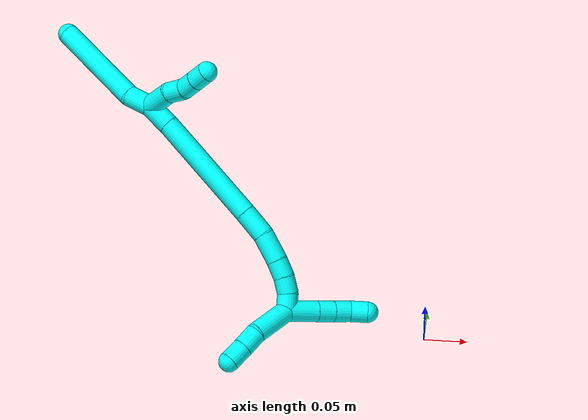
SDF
<sdf version="1.7">
 <world name="default">
  <model name="photoneo_s_sensor">
   <static>1</static>
   <pose>0 0 2 1.57079 1.57079 3.14159</pose>
   <link name="link">
    <inertial><mass>0.1</mass></inertial>
    <sensor name="sensor" type="depth">
     <update_rate>30</update_rate>
     <camera>
      <horizontal_fov>1.22</horizontal_fov>
      <image><width>1920</width><height>1200</height><format>B8G8R8</format></image>
      <clip><near>0.1</near><far>4</far></clip>
      <depth_camera><output>points</output></depth_camera>
     </camera>
     <plugin name="camera_plugin" filename="libgazebo_ros_depth_camera.so">
      <baseline>0.2</baseline>
      <alwaysOn>1</alwaysOn>
      <updateRate>0.0</updateRate>
      <cameraName>camera_ir</cameraName>
      <imageTopicName>/camera/color/image_raw</imageTopicName>
      <cameraInfoTopicName>/camera/color/camera_info</cameraInfoTopicName>
      <depthImageTopicName>/camera/depth/image_raw</depthImageTopicName>
      <depthImageCameraInfoTopicName>/camera/depth/camera_info</depthImageCameraInfoTopicName>
      <pointCloudTopicName>/camera/depth/points</pointCloudTopicName>
      <frameName>fr_optical</frameName>
      <pointCloudCutoff>0.1</pointCloudCutoff>
      <pointCloudCutoffMax>2.0</pointCloudCutoffMax>
      <distortionK1>0</distortionK1>
      <distortionK2>0</distortionK2>
      <distortionK3>0</distortionK3>
      <distortionT1>0</distortionT1>
      <distortionT2>0</distortionT2>
      <CxPrime>0</CxPrime>
      <Cx>0</Cx>
      <Cy>0</Cy>
      <focalLength>0</focalLength>
      <hackBaseline>0</hackBaseline>
     </plugin>
    </sensor>
   </link>
  </model>
  <model name="bin">
   <static>1</static>
   <link name="bottom">
    <collision name="collision-bottom">
     <pose>0 0 -0.01 0 -0 0</pose>
     <geometry><box><size>0.8 0.6 0.02</size></box></geometry>
     <surface>
      <friction><ode><mu>100</mu><mu2>100</mu2></ode></friction>
      <contact><collide_bitmask>65535</collide_bitmask></contact>
     </surface>
    </collision>
   </link>
   <link name="west_wall">
    <collision name="collision-west_wall">
     <pose>-0.41 0 0.1 0 -0 0</pose>
     <geometry><box><size>0.02 0.6 0.2</size></box></geometry>
     <surface>
      <friction><ode><mu>100</mu><mu2>100</mu2></ode></friction>
      <contact><collide_bitmask>65535</collide_bitmask></contact>
     </surface>
    </collision>
   </link>
   <link name="east_wall">
    <collision name="collision-east_wall">
     <pose>0.41 0 0.1 0 -0 0</pose>
     <geometry><box><size>0.02 0.6 0.2</size></box></geometry>
     <surface>
      <friction><ode><mu>100</mu><mu2>100</mu2></ode></friction>
      <contact><collide_bitmask>65535</collide_bitmask></contact>
     </surface>
    </collision>
   </link>
   <link name="south_wall">
    <collision name="collision-south_wall">
     <pose>0 -0.31 0.1 0 -0 0</pose>
     <geometry><box><size>0.8 0.02 0.2</size></box></geometry>
     <surface>
      <friction><ode><mu>100</mu><mu2>100</mu2></ode></friction>
      <contact><collide_bitmask>65535</collide_bitmask></contact>
     </surface>
    </collision>
   </link>
   <link name="north_wall">
    <collision name="collision-north_wall">
     <pose>0 0.31 0.1 0 -0 0</pose>
     <geometry><box><size>0.8 0.02 0.2</size></box></geometry>
     <surface>
      <friction><ode><mu>100</mu><mu2>100</mu2></ode></friction>
      <contact><collide_bitmask>65535</collide_bitmask></contact>
     </surface>
    </collision>
   </link>
  </model>
  <model name="3">
   <static>0</static>
   <link name="3">
    <collision name="collision-cylinder-e_1_2_8">
     <pose>-0.009178 -0.000961 0.011792 0.081335 -0.659802 -0.027864</pose>
     <geometry><cylinder><radius>0.0125</radius><length>0.029947</length></cylinder></geometry>
     <surface>
      <friction><ode><mu>1.16</mu><mu2>1.16</mu2><slip1>0</slip1><slip2>0</slip2></ode></friction>
      <contact><ode><kp>1e+06</kp><kd>1</kd><max_vel>0</max_vel><min_depth>0.001</min_depth></ode></contact>
     </surface>
    </collision>
    <visual name="visual-cylinder-e_1_2_8">
     <pose>-0.009178 -0.000961 0.011792 0.081335 -0.659802 -0.027864</pose>
     <geometry><cylinder><radius>0.0125</radius><length>0.029947</length></cylinder></geometry>
     <material><ambient>0.003922 1 0.996078 1</ambient></material>
    </visual>
    <collision name="collision-cylinder-e_2_8_6">
     <pose>-0.056292 0.012418 0.067838 -0.313375 -0.684097 0.112379</pose>
     <geometry><cylinder><radius>0.0125</radius><length>0.120053</length></cylinder></geometry>
     <surface>
      <friction><ode><mu>1.16</mu><mu2>1.16</mu2><slip1>0</slip1><slip2>0</slip2></ode></friction>
      <contact><ode><kp>1e+06</kp><kd>1</kd><max_vel>0</max_vel><min_depth>0.001</min_depth></ode></contact>
     </surface>
    </collision>
    <visual name="visual-cylinder-e_2_8_6">
     <pose>-0.056292 0.012418 0.067838 -0.313375 -0.684097 0.112379</pose>
     <geometry><cylinder><radius>0.0125</radius><length>0.120053</length></cylinder></geometry>
     <material><ambient>0.003922 1 0.996078 1</ambient></material>
    </visual>
    <collision name="collision-cylinder-e_1_2_9">
     <pose>0.015243 0.010479 -0.00146 -1.70925 0.964029 -1.0825</pose>
     <geometry><cylinder><radius>0.0125</radius><length>0.03711</length></cylinder></geometry>
     <surface>
      <friction><ode><mu>1.16</mu><mu2>1.16</mu2><slip1>0</slip1><slip2>0</slip2></ode></friction>
      <contact><ode><kp>1e+06</kp><kd>1</kd><max_vel>0</max_vel><min_depth>0.001</min_depth></ode></contact>
     </surface>
    </collision>
    <visual name="visual-cylinder-e_1_2_9">
     <pose>0.015243 0.010479 -0.00146 -1.70925 0.964029 -1.0825</pose>
     <geometry><cylinder><radius>0.0125</radius><length>0.03711</length></cylinder></geometry>
     <material><ambient>0.003922 1 0.996078 1</ambient></material>
    </visual>
    <collision name="collision-cylinder-e_2_9_10">
     <pose>0.039484 0.026488 -0.007088 -2.21666 0.914917 -1.5582</pose>
     <geometry><cylinder><radius>0.0125</radius><length>0.022708</length></cylinder></geometry>
     <surface>
      <friction><ode><mu>1.16</mu><mu2>1.16</mu2><slip1>0</slip1><slip2>0</slip2></ode></friction>
      <contact><ode><kp>1e+06</kp><kd>1</kd><max_vel>0</max_vel><min_depth>0.001</min_depth></ode></contact>
     </surface>
    </collision>
    <visual name="visual-cylinder-e_2_9_10">
     <pose>0.039484 0.026488 -0.007088 -2.21666 0.914917 -1.5582</pose>
     <geometry><cylinder><radius>0.0125</radius><length>0.022708</length></cylinder></geometry>
     <material><ambient>0.003922 1 0.996078 1</ambient></material>
    </visual>
    <collision name="collision-cylinder-e_3_10_11">
     <pose>0.056186 0.038398 -0.012048 -1.69438 0.875325 -0.974168</pose>
     <geometry><cylinder><radius>0.0125</radius><length>0.020067</length></cylinder></geometry>
     <surface>
      <friction><ode><mu>1.16</mu><mu2>1.16</mu2><slip1>0</slip1><slip2>0</slip2></ode></friction>
      <contact><ode><kp>1e+06</kp><kd>1</kd><max_vel>0</max_vel><min_depth>0.001</min_depth></ode></contact>
     </surface>
    </collision>
    <visual name="visual-cylinder-e_3_10_11">
     <pose>0.056186 0.038398 -0.012048 -1.69438 0.875325 -0.974168</pose>
     <geometry><cylinder><radius>0.0125</radius><length>0.020067</length></cylinder></geometry>
     <material><ambient>0.003922 1 0.996078 1</ambient></material>
    </visual>
    <collision name="collision-cylinder-e_4_11_5">
     <pose>0.071405 0.051395 -0.013772 -1.71066 0.843991 -0.953684</pose>
     <geometry><cylinder><radius>0.0125</radius><length>0.020114</length></cylinder></geometry>
     <surface>
      <friction><ode><mu>1.16</mu><mu2>1.16</mu2><slip1>0</slip1><slip2>0</slip2></ode></friction>
      <contact><ode><kp>1e+06</kp><kd>1</kd><max_vel>0</max_vel><min_depth>0.001</min_depth></ode></contact>
     </surface>
    </collision>
    <visual name="visual-cylinder-e_4_11_5">
     <pose>0.071405 0.051395 -0.013772 -1.71066 0.843991 -0.953684</pose>
     <geometry><cylinder><radius>0.0125</radius><length>0.020114</length></cylinder></geometry>
     <material><ambient>0.003922 1 0.996078 1</ambient></material>
    </visual>
    <collision name="collision-cylinder-e_1_2_12">
     <pose>0.006169 -0.003267 -0.014196 2.91541 0.400574 2.12143</pose>
     <geometry><cylinder><radius>0.0125</radius><length>0.031638</length></cylinder></geometry>
     <surface>
      <friction><ode><mu>1.16</mu><mu2>1.16</mu2><slip1>0</slip1><slip2>0</slip2></ode></friction>
      <contact><ode><kp>1e+06</kp><kd>1</kd><max_vel>0</max_vel><min_depth>0.001</min_depth></ode></contact>
     </surface>
    </collision>
    <visual name="visual-cylinder-e_1_2_12">
     <pose>0.006169 -0.003267 -0.014196 2.91541 0.400574 2.12143</pose>
     <geometry><cylinder><radius>0.0125</radius><length>0.031638</length></cylinder></geometry>
     <material><ambient>0.003922 1 0.996078 1</ambient></material>
    </visual>
    <collision name="collision-cylinder-e_2_12_13">
     <pose>0.035751 -0.024802 -0.0914 2.85939 0.342803 1.76723</pose>
     <geometry><cylinder><radius>0.0125</radius><length>0.139312</length></cylinder></geometry>
     <surface>
      <friction><ode><mu>1.16</mu><mu2>1.16</mu2><slip1>0</slip1><slip2>0</slip2></ode></friction>
      <contact><ode><kp>1e+06</kp><kd>1</kd><max_vel>0</max_vel><min_depth>0.001</min_depth></ode></contact>
     </surface>
    </collision>
    <visual name="visual-cylinder-e_2_12_13">
     <pose>0.035751 -0.024802 -0.0914 2.85939 0.342803 1.76723</pose>
     <geometry><cylinder><radius>0.0125</radius><length>0.139312</length></cylinder></geometry>
     <material><ambient>0.003922 1 0.996078 1</ambient></material>
    </visual>
    <collision name="collision-cylinder-e_3_13_14">
     <pose>0.063994 -0.047782 -0.169675 2.8423 0.293567 1.55121</pose>
     <geometry><cylinder><radius>0.0125</radius><length>0.033383</length></cylinder></geometry>
     <surface>
      <friction><ode><mu>1.16</mu><mu2>1.16</mu2><slip1>0</slip1><slip2>0</slip2></ode></friction>
      <contact><ode><kp>1e+06</kp><kd>1</kd><max_vel>0</max_vel><min_depth>0.001</min_depth></ode></contact>
     </surface>
    </collision>
    <visual name="visual-cylinder-e_3_13_14">
     <pose>0.063994 -0.047782 -0.169675 2.8423 0.293567 1.55121</pose>
     <geometry><cylinder><radius>0.0125</radius><length>0.033383</length></cylinder></geometry>
     <material><ambient>0.003922 1 0.996078 1</ambient></material>
    </visual>
    <collision name="collision-cylinder-e_4_14_15">
     <pose>0.071686 -0.060208 -0.199752 2.66132 0.169741 0.668793</pose>
     <geometry><cylinder><radius>0.0125</radius><length>0.033886</length></cylinder></geometry>
     <surface>
      <friction><ode><mu>1.16</mu><mu2>1.16</mu2><slip1>0</slip1><slip2>0</slip2></ode></friction>
      <contact><ode><kp>1e+06</kp><kd>1</kd><max_vel>0</max_vel><min_depth>0.001</min_depth></ode></contact>
     </surface>
    </collision>
    <visual name="visual-cylinder-e_4_14_15">
     <pose>0.071686 -0.060208 -0.199752 2.66132 0.169741 0.668793</pose>
     <geometry><cylinder><radius>0.0125</radius><length>0.033886</length></cylinder></geometry>
     <material><ambient>0.003922 1 0.996078 1</ambient></material>
    </visual>
    <collision name="collision-cylinder-e_5_15_16">
     <pose>0.075383 -0.073381 -0.223564 2.59664 0.079124 0.281441</pose>
     <geometry><cylinder><radius>0.0125</radius><length>0.02112</length></cylinder></geometry>
     <surface>
      <friction><ode><mu>1.16</mu><mu2>1.16</mu2><slip1>0</slip1><slip2>0</slip2></ode></friction>
      <contact><ode><kp>1e+06</kp><kd>1</kd><max_vel>0</max_vel><min_depth>0.001</min_depth></ode></contact>
     </surface>
    </collision>
    <visual name="visual-cylinder-e_5_15_16">
     <pose>0.075383 -0.073381 -0.223564 2.59664 0.079124 0.281441</pose>
     <geometry><cylinder><radius>0.0125</radius><length>0.02112</length></cylinder></geometry>
     <material><ambient>0.003922 1 0.996078 1</ambient></material>
    </visual>
    <collision name="collision-cylinder-e_6_16_17">
     <pose>0.076252 -0.085315 -0.240305 2.44469 0.003425 0.009429</pose>
     <geometry><cylinder><radius>0.0125</radius><length>0.020185</length></cylinder></geometry>
     <surface>
      <friction><ode><mu>1.16</mu><mu2>1.16</mu2><slip1>0</slip1><slip2>0</slip2></ode></friction>
      <contact><ode><kp>1e+06</kp><kd>1</kd><max_vel>0</max_vel><min_depth>0.001</min_depth></ode></contact>
     </surface>
    </collision>
    <visual name="visual-cylinder-e_6_16_17">
     <pose>0.076252 -0.085315 -0.240305 2.44469 0.003425 0.009429</pose>
     <geometry><cylinder><radius>0.0125</radius><length>0.020185</length></cylinder></geometry>
     <material><ambient>0.003922 1 0.996078 1</ambient></material>
    </visual>
    <collision name="collision-cylinder-e_7_17_1">
     <pose>0.076556 -0.100557 -0.253331 2.11353 0.0263 0.046571</pose>
     <geometry><cylinder><radius>0.0125</radius><length>0.020477</length></cylinder></geometry>
     <surface>
      <friction><ode><mu>1.16</mu><mu2>1.16</mu2><slip1>0</slip1><slip2>0</slip2></ode></friction>
      <contact><ode><kp>1e+06</kp><kd>1</kd><max_vel>0</max_vel><min_depth>0.001</min_depth></ode></contact>
     </surface>
    </collision>
    <visual name="visual-cylinder-e_7_17_1">
     <pose>0.076556 -0.100557 -0.253331 2.11353 0.0263 0.046571</pose>
     <geometry><cylinder><radius>0.0125</radius><length>0.020477</length></cylinder></geometry>
     <material><ambient>0.003922 1 0.996078 1</ambient></material>
    </visual>
    <collision name="collision-cylinder-e_1_1_18">
     <pose>0.076332 -0.098557 -0.274 -2.53104 -0.026236 0.083213</pose>
     <geometry><cylinder><radius>0.0125</radius><length>0.037563</length></cylinder></geometry>
     <surface>
      <friction><ode><mu>1.16</mu><mu2>1.16</mu2><slip1>0</slip1><slip2>0</slip2></ode></friction>
      <contact><ode><kp>1e+06</kp><kd>1</kd><max_vel>0</max_vel><min_depth>0.001</min_depth></ode></contact>
     </surface>
    </collision>
    <visual name="visual-cylinder-e_1_1_18">
     <pose>0.076332 -0.098557 -0.274 -2.53104 -0.026236 0.083213</pose>
     <geometry><cylinder><radius>0.0125</radius><length>0.037563</length></cylinder></geometry>
     <material><ambient>0.003922 1 0.996078 1</ambient></material>
    </visual>
    <collision name="collision-cylinder-e_2_18_19">
     <pose>0.075554 -0.081844 -0.297826 -2.5278 -0.027602 0.087048</pose>
     <geometry><cylinder><radius>0.0125</radius><length>0.020665</length></cylinder></geometry>
     <surface>
      <friction><ode><mu>1.16</mu><mu2>1.16</mu2><slip1>0</slip1><slip2>0</slip2></ode></friction>
      <contact><ode><kp>1e+06</kp><kd>1</kd><max_vel>0</max_vel><min_depth>0.001</min_depth></ode></contact>
     </surface>
    </collision>
    <visual name="visual-cylinder-e_2_18_19">
     <pose>0.075554 -0.081844 -0.297826 -2.5278 -0.027602 0.087048</pose>
     <geometry><cylinder><radius>0.0125</radius><length>0.020665</length></cylinder></geometry>
     <material><ambient>0.003922 1 0.996078 1</ambient></material>
    </visual>
    <collision name="collision-cylinder-e_3_19_20">
     <pose>0.075103 -0.069807 -0.314605 -2.51079 -0.016066 0.049229</pose>
     <geometry><cylinder><radius>0.0125</radius><length>0.020647</length></cylinder></geometry>
     <surface>
      <friction><ode><mu>1.16</mu><mu2>1.16</mu2><slip1>0</slip1><slip2>0</slip2></ode></friction>
      <contact><ode><kp>1e+06</kp><kd>1</kd><max_vel>0</max_vel><min_depth>0.001</min_depth></ode></contact>
     </surface>
    </collision>
    <visual name="visual-cylinder-e_3_19_20">
     <pose>0.075103 -0.069807 -0.314605 -2.51079 -0.016066 0.049229</pose>
     <geometry><cylinder><radius>0.0125</radius><length>0.020647</length></cylinder></geometry>
     <material><ambient>0.003922 1 0.996078 1</ambient></material>
    </visual>
    <collision name="collision-cylinder-e_4_20_4">
     <pose>0.07817 -0.058246 -0.331377 -2.56616 0.311055 -0.974457</pose>
     <geometry><cylinder><radius>0.0125</radius><length>0.021125</length></cylinder></geometry>
     <surface>
      <friction><ode><mu>1.16</mu><mu2>1.16</mu2><slip1>0</slip1><slip2>0</slip2></ode></friction>
      <contact><ode><kp>1e+06</kp><kd>1</kd><max_vel>0</max_vel><min_depth>0.001</min_depth></ode></contact>
     </surface>
    </collision>
    <visual name="visual-cylinder-e_4_20_4">
     <pose>0.07817 -0.058246 -0.331377 -2.56616 0.311055 -0.974457</pose>
     <geometry><cylinder><radius>0.0125</radius><length>0.021125</length></cylinder></geometry>
     <material><ambient>0.003922 1 0.996078 1</ambient></material>
    </visual>
    <collision name="collision-cylinder-e_1_1_21">
     <pose>0.08508 -0.132022 -0.248802 1.16273 0.322143 0.212731</pose>
     <geometry><cylinder><radius>0.0125</radius><length>0.052147</length></cylinder></geometry>
     <surface>
      <friction><ode><mu>1.16</mu><mu2>1.16</mu2><slip1>0</slip1><slip2>0</slip2></ode></friction>
      <contact><ode><kp>1e+06</kp><kd>1</kd><max_vel>0</max_vel><min_depth>0.001</min_depth></ode></contact>
     </surface>
    </collision>
    <visual name="visual-cylinder-e_1_1_21">
     <pose>0.08508 -0.132022 -0.248802 1.16273 0.322143 0.212731</pose>
     <geometry><cylinder><radius>0.0125</radius><length>0.052147</length></cylinder></geometry>
     <material><ambient>0.003922 1 0.996078 1</ambient></material>
    </visual>
    <collision name="collision-cylinder-e_2_21_22">
     <pose>0.094836 -0.166519 -0.236985 1.4026 0.124846 0.105473</pose>
     <geometry><cylinder><radius>0.0125</radius><length>0.024115</length></cylinder></geometry>
     <surface>
      <friction><ode><mu>1.16</mu><mu2>1.16</mu2><slip1>0</slip1><slip2>0</slip2></ode></friction>
      <contact><ode><kp>1e+06</kp><kd>1</kd><max_vel>0</max_vel><min_depth>0.001</min_depth></ode></contact>
     </surface>
    </collision>
    <visual name="visual-cylinder-e_2_21_22">
     <pose>0.094836 -0.166519 -0.236985 1.4026 0.124846 0.105473</pose>
     <geometry><cylinder><radius>0.0125</radius><length>0.024115</length></cylinder></geometry>
     <material><ambient>0.003922 1 0.996078 1</ambient></material>
    </visual>
    <collision name="collision-cylinder-e_3_22_3">
     <pose>0.09793 -0.189828 -0.232582 1.36531 0.134584 0.109481</pose>
     <geometry><cylinder><radius>0.0125</radius><length>0.023738</length></cylinder></geometry>
     <surface>
      <friction><ode><mu>1.16</mu><mu2>1.16</mu2><slip1>0</slip1><slip2>0</slip2></ode></friction>
      <contact><ode><kp>1e+06</kp><kd>1</kd><max_vel>0</max_vel><min_depth>0.001</min_depth></ode></contact>
     </surface>
    </collision>
    <visual name="visual-cylinder-e_3_22_3">
     <pose>0.09793 -0.189828 -0.232582 1.36531 0.134584 0.109481</pose>
     <geometry><cylinder><radius>0.0125</radius><length>0.023738</length></cylinder></geometry>
     <material><ambient>0.003922 1 0.996078 1</ambient></material>
    </visual>
    <collision name="collision-sphere-3">
     <pose>0.099523 -0.201342 -0.230182 0 -0 0</pose>
     <geometry><sphere><radius>0.0125</radius></sphere></geometry>
     <surface>
      <friction><ode><mu>1.16</mu><mu2>1.16</mu2><slip1>0</slip1><slip2>0</slip2></ode></friction>
      <contact><ode><kp>1e+06</kp><kd>1</kd><max_vel>0</max_vel><min_depth>0.001</min_depth></ode></contact>
     </surface>
    </collision>
    <visual name="visual-sphere-3">
     <pose>0.099523 -0.201342 -0.230182 0 -0 0</pose>
     <geometry><sphere><radius>0.0125</radius></sphere></geometry>
     <material><ambient>0.003922 1 0.996078 1</ambient></material>
    </visual>
    <collision name="collision-sphere-22">
     <pose>0.096338 -0.178314 -0.234982 0 -0 0</pose>
     <geometry><sphere><radius>0.0125</radius></sphere></geometry>
     <surface>
      <friction><ode><mu>1.16</mu><mu2>1.16</mu2><slip1>0</slip1><slip2>0</slip2></ode></friction>
      <contact><ode><kp>1e+06</kp><kd>1</kd><max_vel>0</max_vel><min_depth>0.001</min_depth></ode></contact>
     </surface>
    </collision>
    <visual name="visual-sphere-22">
     <pose>0.096338 -0.178314 -0.234982 0 -0 0</pose>
     <geometry><sphere><radius>0.0125</radius></sphere></geometry>
     <material><ambient>0.003922 1 0.996078 1</ambient></material>
    </visual>
    <collision name="collision-sphere-21">
     <pose>0.093335 -0.154724 -0.238988 0 -0 0</pose>
     <geometry><sphere><radius>0.0125</radius></sphere></geometry>
     <surface>
      <friction><ode><mu>1.16</mu><mu2>1.16</mu2><slip1>0</slip1><slip2>0</slip2></ode></friction>
      <contact><ode><kp>1e+06</kp><kd>1</kd><max_vel>0</max_vel><min_depth>0.001</min_depth></ode></contact>
     </surface>
    </collision>
    <visual name="visual-sphere-21">
     <pose>0.093335 -0.154724 -0.238988 0 -0 0</pose>
     <geometry><sphere><radius>0.0125</radius></sphere></geometry>
     <material><ambient>0.003922 1 0.996078 1</ambient></material>
    </visual>
    <collision name="collision-sphere-4">
     <pose>0.081403 -0.052774 -0.339813 0 -0 0</pose>
     <geometry><sphere><radius>0.0125</radius></sphere></geometry>
     <surface>
      <friction><ode><mu>1.16</mu><mu2>1.16</mu2><slip1>0</slip1><slip2>0</slip2></ode></friction>
      <contact><ode><kp>1e+06</kp><kd>1</kd><max_vel>0</max_vel><min_depth>0.001</min_depth></ode></contact>
     </surface>
    </collision>
    <visual name="visual-sphere-4">
     <pose>0.081403 -0.052774 -0.339813 0 -0 0</pose>
     <geometry><sphere><radius>0.0125</radius></sphere></geometry>
     <material><ambient>0.003922 1 0.996078 1</ambient></material>
    </visual>
    <collision name="collision-sphere-20">
     <pose>0.074938 -0.063719 -0.322941 0 -0 0</pose>
     <geometry><sphere><radius>0.0125</radius></sphere></geometry>
     <surface>
      <friction><ode><mu>1.16</mu><mu2>1.16</mu2><slip1>0</slip1><slip2>0</slip2></ode></friction>
      <contact><ode><kp>1e+06</kp><kd>1</kd><max_vel>0</max_vel><min_depth>0.001</min_depth></ode></contact>
     </surface>
    </collision>
    <visual name="visual-sphere-20">
     <pose>0.074938 -0.063719 -0.322941 0 -0 0</pose>
     <geometry><sphere><radius>0.0125</radius></sphere></geometry>
     <material><ambient>0.003922 1 0.996078 1</ambient></material>
    </visual>
    <collision name="collision-sphere-11">
     <pose>0.063889 0.044778 -0.012841 0 -0 0</pose>
     <geometry><sphere><radius>0.0125</radius></sphere></geometry>
     <surface>
      <friction><ode><mu>1.16</mu><mu2>1.16</mu2><slip1>0</slip1><slip2>0</slip2></ode></friction>
      <contact><ode><kp>1e+06</kp><kd>1</kd><max_vel>0</max_vel><min_depth>0.001</min_depth></ode></contact>
     </surface>
    </collision>
    <visual name="visual-sphere-11">
     <pose>0.063889 0.044778 -0.012841 0 -0 0</pose>
     <geometry><sphere><radius>0.0125</radius></sphere></geometry>
     <material><ambient>0.003922 1 0.996078 1</ambient></material>
    </visual>
    <collision name="collision-sphere-10">
     <pose>0.048483 0.032018 -0.011256 0 -0 0</pose>
     <geometry><sphere><radius>0.0125</radius></sphere></geometry>
     <surface>
      <friction><ode><mu>1.16</mu><mu2>1.16</mu2><slip1>0</slip1><slip2>0</slip2></ode></friction>
      <contact><ode><kp>1e+06</kp><kd>1</kd><max_vel>0</max_vel><min_depth>0.001</min_depth></ode></contact>
     </surface>
    </collision>
    <visual name="visual-sphere-10">
     <pose>0.048483 0.032018 -0.011256 0 -0 0</pose>
     <geometry><sphere><radius>0.0125</radius></sphere></geometry>
     <material><ambient>0.003922 1 0.996078 1</ambient></material>
    </visual>
    <collision name="collision-sphere-6">
     <pose>-0.094227 0.026759 0.112092 0 -0 0</pose>
     <geometry><sphere><radius>0.0125</radius></sphere></geometry>
     <surface>
      <friction><ode><mu>1.16</mu><mu2>1.16</mu2><slip1>0</slip1><slip2>0</slip2></ode></friction>
      <contact><ode><kp>1e+06</kp><kd>1</kd><max_vel>0</max_vel><min_depth>0.001</min_depth></ode></contact>
     </surface>
    </collision>
    <visual name="visual-sphere-6">
     <pose>-0.094227 0.026759 0.112092 0 -0 0</pose>
     <geometry><sphere><radius>0.0125</radius></sphere></geometry>
     <material><ambient>0.003922 1 0.996078 1</ambient></material>
    </visual>
    <collision name="collision-sphere-9">
     <pose>0.030486 0.020958 -0.00292 0 -0 0</pose>
     <geometry><sphere><radius>0.0125</radius></sphere></geometry>
     <surface>
      <friction><ode><mu>1.16</mu><mu2>1.16</mu2><slip1>0</slip1><slip2>0</slip2></ode></friction>
      <contact><ode><kp>1e+06</kp><kd>1</kd><max_vel>0</max_vel><min_depth>0.001</min_depth></ode></contact>
     </surface>
    </collision>
    <visual name="visual-sphere-9">
     <pose>0.030486 0.020958 -0.00292 0 -0 0</pose>
     <geometry><sphere><radius>0.0125</radius></sphere></geometry>
     <material><ambient>0.003922 1 0.996078 1</ambient></material>
    </visual>
    <collision name="collision-sphere-2">
     <geometry><sphere><radius>0.0125</radius></sphere></geometry>
     <surface>
      <friction><ode><mu>1.16</mu><mu2>1.16</mu2><slip1>0</slip1><slip2>0</slip2></ode></friction>
      <contact><ode><kp>1e+06</kp><kd>1</kd><max_vel>0</max_vel><min_depth>0.001</min_depth></ode></contact>
     </surface>
    </collision>
    <visual name="visual-sphere-2">
     <geometry><sphere><radius>0.0125</radius></sphere></geometry>
     <material><ambient>0.003922 1 0.996078 1</ambient></material>
    </visual>
    <collision name="collision-sphere-19">
     <pose>0.075269 -0.075895 -0.306269 0 -0 0</pose>
     <geometry><sphere><radius>0.0125</radius></sphere></geometry>
     <surface>
      <friction><ode><mu>1.16</mu><mu2>1.16</mu2><slip1>0</slip1><slip2>0</slip2></ode></friction>
      <contact><ode><kp>1e+06</kp><kd>1</kd><max_vel>0</max_vel><min_depth>0.001</min_depth></ode></contact>
     </surface>
    </collision>
    <visual name="visual-sphere-19">
     <pose>0.075269 -0.075895 -0.306269 0 -0 0</pose>
     <geometry><sphere><radius>0.0125</radius></sphere></geometry>
     <material><ambient>0.003922 1 0.996078 1</ambient></material>
    </visual>
    <collision name="collision-sphere-8">
     <pose>-0.018356 -0.001922 0.023584 0 -0 0</pose>
     <geometry><sphere><radius>0.0125</radius></sphere></geometry>
     <surface>
      <friction><ode><mu>1.16</mu><mu2>1.16</mu2><slip1>0</slip1><slip2>0</slip2></ode></friction>
      <contact><ode><kp>1e+06</kp><kd>1</kd><max_vel>0</max_vel><min_depth>0.001</min_depth></ode></contact>
     </surface>
    </collision>
    <visual name="visual-sphere-8">
     <pose>-0.018356 -0.001922 0.023584 0 -0 0</pose>
     <geometry><sphere><radius>0.0125</radius></sphere></geometry>
     <material><ambient>0.003922 1 0.996078 1</ambient></material>
    </visual>
    <collision name="collision-sphere-5">
     <pose>0.078921 0.058013 -0.014704 0 -0 0</pose>
     <geometry><sphere><radius>0.0125</radius></sphere></geometry>
     <surface>
      <friction><ode><mu>1.16</mu><mu2>1.16</mu2><slip1>0</slip1><slip2>0</slip2></ode></friction>
      <contact><ode><kp>1e+06</kp><kd>1</kd><max_vel>0</max_vel><min_depth>0.001</min_depth></ode></contact>
     </surface>
    </collision>
    <visual name="visual-sphere-5">
     <pose>0.078921 0.058013 -0.014704 0 -0 0</pose>
     <geometry><sphere><radius>0.0125</radius></sphere></geometry>
     <material><ambient>0.003922 1 0.996078 1</ambient></material>
    </visual>
    <collision name="collision-sphere-12">
     <pose>0.012337 -0.006533 -0.028392 0 -0 0</pose>
     <geometry><sphere><radius>0.0125</radius></sphere></geometry>
     <surface>
      <friction><ode><mu>1.16</mu><mu2>1.16</mu2><slip1>0</slip1><slip2>0</slip2></ode></friction>
      <contact><ode><kp>1e+06</kp><kd>1</kd><max_vel>0</max_vel><min_depth>0.001</min_depth></ode></contact>
     </surface>
    </collision>
    <visual name="visual-sphere-12">
     <pose>0.012337 -0.006533 -0.028392 0 -0 0</pose>
     <geometry><sphere><radius>0.0125</radius></sphere></geometry>
     <material><ambient>0.003922 1 0.996078 1</ambient></material>
    </visual>
    <collision name="collision-sphere-13">
     <pose>0.059164 -0.043071 -0.154408 0 -0 0</pose>
     <geometry><sphere><radius>0.0125</radius></sphere></geometry>
     <surface>
      <friction><ode><mu>1.16</mu><mu2>1.16</mu2><slip1>0</slip1><slip2>0</slip2></ode></friction>
      <contact><ode><kp>1e+06</kp><kd>1</kd><max_vel>0</max_vel><min_depth>0.001</min_depth></ode></contact>
     </surface>
    </collision>
    <visual name="visual-sphere-13">
     <pose>0.059164 -0.043071 -0.154408 0 -0 0</pose>
     <geometry><sphere><radius>0.0125</radius></sphere></geometry>
     <material><ambient>0.003922 1 0.996078 1</ambient></material>
    </visual>
    <collision name="collision-sphere-14">
     <pose>0.068824 -0.052493 -0.184942 0 -0 0</pose>
     <geometry><sphere><radius>0.0125</radius></sphere></geometry>
     <surface>
      <friction><ode><mu>1.16</mu><mu2>1.16</mu2><slip1>0</slip1><slip2>0</slip2></ode></friction>
      <contact><ode><kp>1e+06</kp><kd>1</kd><max_vel>0</max_vel><min_depth>0.001</min_depth></ode></contact>
     </surface>
    </collision>
    <visual name="visual-sphere-14">
     <pose>0.068824 -0.052493 -0.184942 0 -0 0</pose>
     <geometry><sphere><radius>0.0125</radius></sphere></geometry>
     <material><ambient>0.003922 1 0.996078 1</ambient></material>
    </visual>
    <collision name="collision-sphere-15">
     <pose>0.074548 -0.067924 -0.214562 0 -0 0</pose>
     <geometry><sphere><radius>0.0125</radius></sphere></geometry>
     <surface>
      <friction><ode><mu>1.16</mu><mu2>1.16</mu2><slip1>0</slip1><slip2>0</slip2></ode></friction>
      <contact><ode><kp>1e+06</kp><kd>1</kd><max_vel>0</max_vel><min_depth>0.001</min_depth></ode></contact>
     </surface>
    </collision>
    <visual name="visual-sphere-15">
     <pose>0.074548 -0.067924 -0.214562 0 -0 0</pose>
     <geometry><sphere><radius>0.0125</radius></sphere></geometry>
     <material><ambient>0.003922 1 0.996078 1</ambient></material>
    </visual>
    <collision name="collision-sphere-16">
     <pose>0.076217 -0.078837 -0.232566 0 -0 0</pose>
     <geometry><sphere><radius>0.0125</radius></sphere></geometry>
     <surface>
      <friction><ode><mu>1.16</mu><mu2>1.16</mu2><slip1>0</slip1><slip2>0</slip2></ode></friction>
      <contact><ode><kp>1e+06</kp><kd>1</kd><max_vel>0</max_vel><min_depth>0.001</min_depth></ode></contact>
     </surface>
    </collision>
    <visual name="visual-sphere-16">
     <pose>0.076217 -0.078837 -0.232566 0 -0 0</pose>
     <geometry><sphere><radius>0.0125</radius></sphere></geometry>
     <material><ambient>0.003922 1 0.996078 1</ambient></material>
    </visual>
    <collision name="collision-sphere-17">
     <pose>0.076287 -0.091793 -0.248045 0 -0 0</pose>
     <geometry><sphere><radius>0.0125</radius></sphere></geometry>
     <surface>
      <friction><ode><mu>1.16</mu><mu2>1.16</mu2><slip1>0</slip1><slip2>0</slip2></ode></friction>
      <contact><ode><kp>1e+06</kp><kd>1</kd><max_vel>0</max_vel><min_depth>0.001</min_depth></ode></contact>
     </surface>
    </collision>
    <visual name="visual-sphere-17">
     <pose>0.076287 -0.091793 -0.248045 0 -0 0</pose>
     <geometry><sphere><radius>0.0125</radius></sphere></geometry>
     <material><ambient>0.003922 1 0.996078 1</ambient></material>
    </visual>
    <collision name="collision-sphere-1">
     <pose>0.076825 -0.109321 -0.258617 0 -0 0</pose>
     <geometry><sphere><radius>0.0125</radius></sphere></geometry>
     <surface>
      <friction><ode><mu>1.16</mu><mu2>1.16</mu2><slip1>0</slip1><slip2>0</slip2></ode></friction>
      <contact><ode><kp>1e+06</kp><kd>1</kd><max_vel>0</max_vel><min_depth>0.001</min_depth></ode></contact>
     </surface>
    </collision>
    <visual name="visual-sphere-1">
     <pose>0.076825 -0.109321 -0.258617 0 -0 0</pose>
     <geometry><sphere><radius>0.0125</radius></sphere></geometry>
     <material><ambient>0.003922 1 0.996078 1</ambient></material>
    </visual>
    <collision name="collision-sphere-18">
     <pose>0.07584 -0.087793 -0.289383 0 -0 0</pose>
     <geometry><sphere><radius>0.0125</radius></sphere></geometry>
     <surface>
      <friction><ode><mu>1.16</mu><mu2>1.16</mu2><slip1>0</slip1><slip2>0</slip2></ode></friction>
      <contact><ode><kp>1e+06</kp><kd>1</kd><max_vel>0</max_vel><min_depth>0.001</min_depth></ode></contact>
     </surface>
    </collision>
    <visual name="visual-sphere-18">
     <pose>0.07584 -0.087793 -0.289383 0 -0 0</pose>
     <geometry><sphere><radius>0.0125</radius></sphere></geometry>
     <material><ambient>0.003922 1 0.996078 1</ambient></material>
    </visual>
    <inertial>
     <pose>0.037483 -0.042319 -0.115686 0 -0 0</pose>
     <mass>0.75</mass>
     <inertia>
      <ixx>0.000351</ixx>
      <ixy>0</ixy>
      <ixz>0</ixz>
      <iyy>0.000443</iyy>
      <iyz>0</iyz>
      <izz>2.1e-05</izz>
     </inertia>
    </inertial>
   </link>
   <pose>-0.340269 0.155667 0.199711 0.708282 -0.634052 -1.08728</pose>
  </model>
 </world>
</sdf>
